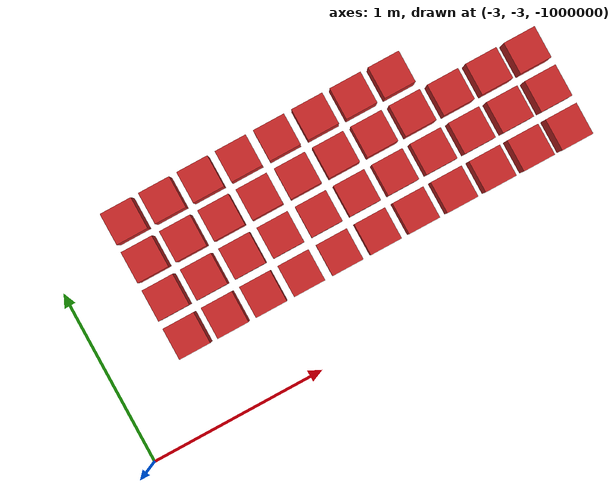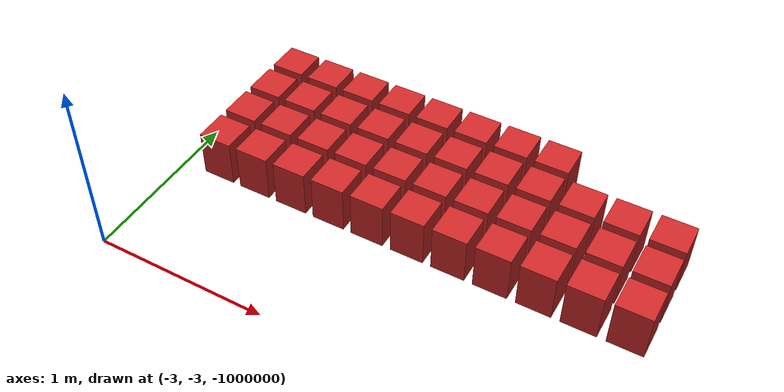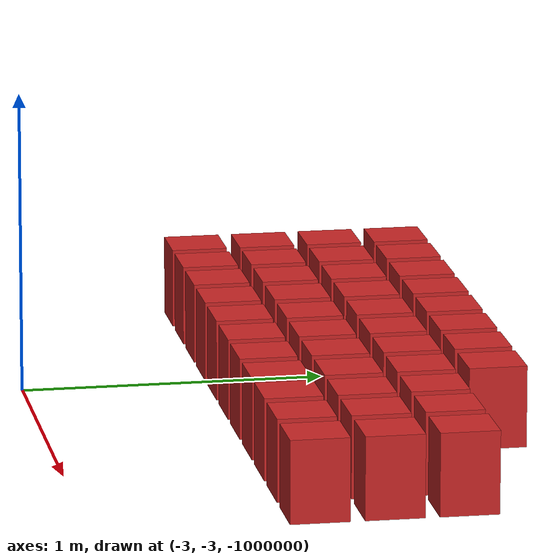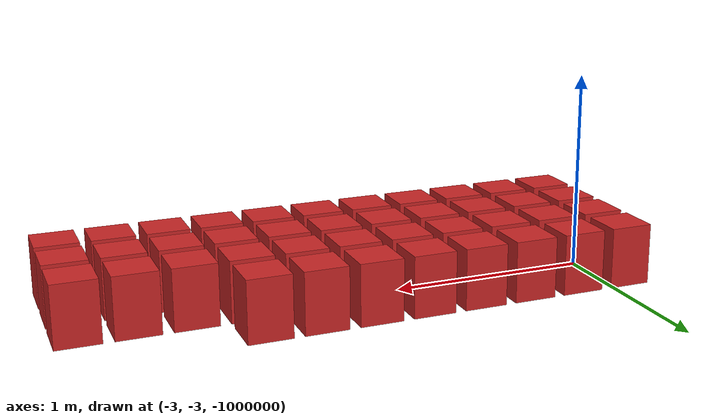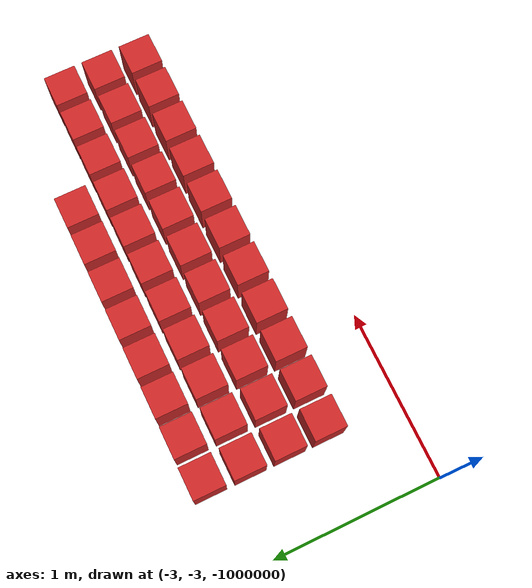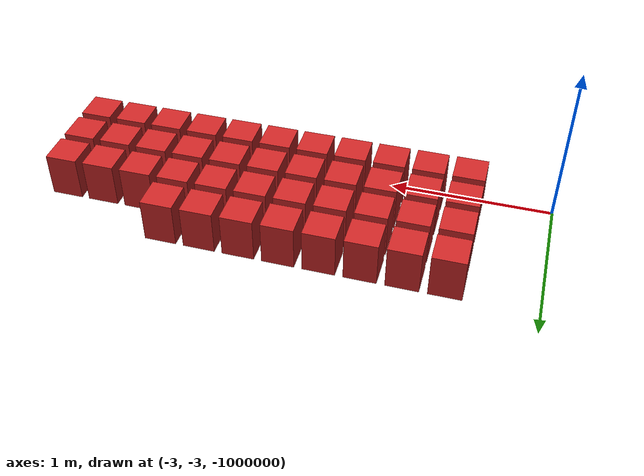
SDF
<sdf version="1.7">
 <world name="default">
  <model name="ground_plane">
   <static>1</static>
   <link name="link">
    <collision name="collision">
     <geometry><plane><normal>0 0 1</normal><size>100 100</size></plane></geometry>
     <surface>
      <contact><collide_bitmask>65535</collide_bitmask></contact>
      <friction><ode><mu>100</mu><mu2>50</mu2></ode></friction>
     </surface>
    </collision>
    <visual name="visual">
     <cast_shadows>0</cast_shadows>
     <geometry><plane><normal>0 0 1</normal><size>100 100</size></plane></geometry>
     <material>
      <script><uri>file://media/materials/scripts/gazebo.material</uri><name>Gazebo/Grey</name></script>
     </material>
    </visual>
   </link>
  </model>
  <model name="wall_0">
   <link name="link">
    <pose>0 0 0.5 0 -0 0</pose>
    <inertial>
     <mass>0.5167</mass>
     <inertia>
      <ixx>0.000861167</ixx>
      <ixy>0</ixy>
      <ixz>0</ixz>
      <iyy>0.000861167</iyy>
      <iyz>0</iyz>
      <izz>0.000861167</izz>
     </inertia>
    </inertial>
    <collision name="collision">
     <geometry><box><size>0.21 0.21 0.25</size></box></geometry>
     <surface>
      <contact>
       <poissons_ratio>0.347</poissons_ratio>
       <elastic_modulus>8.8e+09</elastic_modulus>
       <ode><kp>100000</kp><kd>100</kd><max_vel>100</max_vel><min_depth>0.001</min_depth></ode>
      </contact>
      <friction>
       <torsional>
        <coefficient>1</coefficient>
        <use_patch_radius>0</use_patch_radius>
        <surface_radius>0.01</surface_radius>
       </torsional>
      </friction>
     </surface>
    </collision>
    <visual name="visual">
     <geometry><box><size>0.175 0.175 0.25</size></box></geometry>
     <material>
      <script><uri>file://media/materials/scripts/gazebo.material</uri><name>Gazebo/Red</name></script>
     </material>
    </visual>
   </link>
   <pose>-2.5 -2.5 -1e+06 0 -0 0</pose>
  </model>
  <model name="wall_1">
   <link name="link">
    <pose>0 0 0.5 0 -0 0</pose>
    <inertial>
     <mass>0.5167</mass>
     <inertia>
      <ixx>0.000861167</ixx>
      <ixy>0</ixy>
      <ixz>0</ixz>
      <iyy>0.000861167</iyy>
      <iyz>0</iyz>
      <izz>0.000861167</izz>
     </inertia>
    </inertial>
    <collision name="collision">
     <geometry><box><size>0.21 0.21 0.25</size></box></geometry>
     <surface>
      <contact>
       <poissons_ratio>0.347</poissons_ratio>
       <elastic_modulus>8.8e+09</elastic_modulus>
       <ode><kp>100000</kp><kd>100</kd><max_vel>100</max_vel><min_depth>0.001</min_depth></ode>
      </contact>
      <friction>
       <torsional>
        <coefficient>1</coefficient>
        <use_patch_radius>0</use_patch_radius>
        <surface_radius>0.01</surface_radius>
       </torsional>
      </friction>
     </surface>
    </collision>
    <visual name="visual">
     <geometry><box><size>0.175 0.175 0.25</size></box></geometry>
     <material>
      <script><uri>file://media/materials/scripts/gazebo.material</uri><name>Gazebo/Red</name></script>
     </material>
    </visual>
   </link>
   <pose>-2.28261 -2.5 -1e+06 0 -0 0</pose>
  </model>
  <model name="wall_2">
   <link name="link">
    <pose>0 0 0.5 0 -0 0</pose>
    <inertial>
     <mass>0.5167</mass>
     <inertia>
      <ixx>0.000861167</ixx>
      <ixy>0</ixy>
      <ixz>0</ixz>
      <iyy>0.000861167</iyy>
      <iyz>0</iyz>
      <izz>0.000861167</izz>
     </inertia>
    </inertial>
    <collision name="collision">
     <geometry><box><size>0.21 0.21 0.25</size></box></geometry>
     <surface>
      <contact>
       <poissons_ratio>0.347</poissons_ratio>
       <elastic_modulus>8.8e+09</elastic_modulus>
       <ode><kp>100000</kp><kd>100</kd><max_vel>100</max_vel><min_depth>0.001</min_depth></ode>
      </contact>
      <friction>
       <torsional>
        <coefficient>1</coefficient>
        <use_patch_radius>0</use_patch_radius>
        <surface_radius>0.01</surface_radius>
       </torsional>
      </friction>
     </surface>
    </collision>
    <visual name="visual">
     <geometry><box><size>0.175 0.175 0.25</size></box></geometry>
     <material>
      <script><uri>file://media/materials/scripts/gazebo.material</uri><name>Gazebo/Red</name></script>
     </material>
    </visual>
   </link>
   <pose>-2.06522 -2.5 -1e+06 0 -0 0</pose>
  </model>
  <model name="wall_3">
   <link name="link">
    <pose>0 0 0.5 0 -0 0</pose>
    <inertial>
     <mass>0.5167</mass>
     <inertia>
      <ixx>0.000861167</ixx>
      <ixy>0</ixy>
      <ixz>0</ixz>
      <iyy>0.000861167</iyy>
      <iyz>0</iyz>
      <izz>0.000861167</izz>
     </inertia>
    </inertial>
    <collision name="collision">
     <geometry><box><size>0.21 0.21 0.25</size></box></geometry>
     <surface>
      <contact>
       <poissons_ratio>0.347</poissons_ratio>
       <elastic_modulus>8.8e+09</elastic_modulus>
       <ode><kp>100000</kp><kd>100</kd><max_vel>100</max_vel><min_depth>0.001</min_depth></ode>
      </contact>
      <friction>
       <torsional>
        <coefficient>1</coefficient>
        <use_patch_radius>0</use_patch_radius>
        <surface_radius>0.01</surface_radius>
       </torsional>
      </friction>
     </surface>
    </collision>
    <visual name="visual">
     <geometry><box><size>0.175 0.175 0.25</size></box></geometry>
     <material>
      <script><uri>file://media/materials/scripts/gazebo.material</uri><name>Gazebo/Red</name></script>
     </material>
    </visual>
   </link>
   <pose>-1.84783 -2.5 -1e+06 0 -0 0</pose>
  </model>
  <model name="wall_4">
   <link name="link">
    <pose>0 0 0.5 0 -0 0</pose>
    <inertial>
     <mass>0.5167</mass>
     <inertia>
      <ixx>0.000861167</ixx>
      <ixy>0</ixy>
      <ixz>0</ixz>
      <iyy>0.000861167</iyy>
      <iyz>0</iyz>
      <izz>0.000861167</izz>
     </inertia>
    </inertial>
    <collision name="collision">
     <geometry><box><size>0.21 0.21 0.25</size></box></geometry>
     <surface>
      <contact>
       <poissons_ratio>0.347</poissons_ratio>
       <elastic_modulus>8.8e+09</elastic_modulus>
       <ode><kp>100000</kp><kd>100</kd><max_vel>100</max_vel><min_depth>0.001</min_depth></ode>
      </contact>
      <friction>
       <torsional>
        <coefficient>1</coefficient>
        <use_patch_radius>0</use_patch_radius>
        <surface_radius>0.01</surface_radius>
       </torsional>
      </friction>
     </surface>
    </collision>
    <visual name="visual">
     <geometry><box><size>0.175 0.175 0.25</size></box></geometry>
     <material>
      <script><uri>file://media/materials/scripts/gazebo.material</uri><name>Gazebo/Red</name></script>
     </material>
    </visual>
   </link>
   <pose>-1.63043 -2.5 -1e+06 0 -0 0</pose>
  </model>
  <model name="wall_5">
   <link name="link">
    <pose>0 0 0.5 0 -0 0</pose>
    <inertial>
     <mass>0.5167</mass>
     <inertia>
      <ixx>0.000861167</ixx>
      <ixy>0</ixy>
      <ixz>0</ixz>
      <iyy>0.000861167</iyy>
      <iyz>0</iyz>
      <izz>0.000861167</izz>
     </inertia>
    </inertial>
    <collision name="collision">
     <geometry><box><size>0.21 0.21 0.25</size></box></geometry>
     <surface>
      <contact>
       <poissons_ratio>0.347</poissons_ratio>
       <elastic_modulus>8.8e+09</elastic_modulus>
       <ode><kp>100000</kp><kd>100</kd><max_vel>100</max_vel><min_depth>0.001</min_depth></ode>
      </contact>
      <friction>
       <torsional>
        <coefficient>1</coefficient>
        <use_patch_radius>0</use_patch_radius>
        <surface_radius>0.01</surface_radius>
       </torsional>
      </friction>
     </surface>
    </collision>
    <visual name="visual">
     <geometry><box><size>0.175 0.175 0.25</size></box></geometry>
     <material>
      <script><uri>file://media/materials/scripts/gazebo.material</uri><name>Gazebo/Red</name></script>
     </material>
    </visual>
   </link>
   <pose>-1.41304 -2.5 -1e+06 0 -0 0</pose>
  </model>
  <model name="wall_6">
   <link name="link">
    <pose>0 0 0.5 0 -0 0</pose>
    <inertial>
     <mass>0.5167</mass>
     <inertia>
      <ixx>0.000861167</ixx>
      <ixy>0</ixy>
      <ixz>0</ixz>
      <iyy>0.000861167</iyy>
      <iyz>0</iyz>
      <izz>0.000861167</izz>
     </inertia>
    </inertial>
    <collision name="collision">
     <geometry><box><size>0.21 0.21 0.25</size></box></geometry>
     <surface>
      <contact>
       <poissons_ratio>0.347</poissons_ratio>
       <elastic_modulus>8.8e+09</elastic_modulus>
       <ode><kp>100000</kp><kd>100</kd><max_vel>100</max_vel><min_depth>0.001</min_depth></ode>
      </contact>
      <friction>
       <torsional>
        <coefficient>1</coefficient>
        <use_patch_radius>0</use_patch_radius>
        <surface_radius>0.01</surface_radius>
       </torsional>
      </friction>
     </surface>
    </collision>
    <visual name="visual">
     <geometry><box><size>0.175 0.175 0.25</size></box></geometry>
     <material>
      <script><uri>file://media/materials/scripts/gazebo.material</uri><name>Gazebo/Red</name></script>
     </material>
    </visual>
   </link>
   <pose>-1.19565 -2.5 -1e+06 0 -0 0</pose>
  </model>
  <model name="wall_7">
   <link name="link">
    <pose>0 0 0.5 0 -0 0</pose>
    <inertial>
     <mass>0.5167</mass>
     <inertia>
      <ixx>0.000861167</ixx>
      <ixy>0</ixy>
      <ixz>0</ixz>
      <iyy>0.000861167</iyy>
      <iyz>0</iyz>
      <izz>0.000861167</izz>
     </inertia>
    </inertial>
    <collision name="collision">
     <geometry><box><size>0.21 0.21 0.25</size></box></geometry>
     <surface>
      <contact>
       <poissons_ratio>0.347</poissons_ratio>
       <elastic_modulus>8.8e+09</elastic_modulus>
       <ode><kp>100000</kp><kd>100</kd><max_vel>100</max_vel><min_depth>0.001</min_depth></ode>
      </contact>
      <friction>
       <torsional>
        <coefficient>1</coefficient>
        <use_patch_radius>0</use_patch_radius>
        <surface_radius>0.01</surface_radius>
       </torsional>
      </friction>
     </surface>
    </collision>
    <visual name="visual">
     <geometry><box><size>0.175 0.175 0.25</size></box></geometry>
     <material>
      <script><uri>file://media/materials/scripts/gazebo.material</uri><name>Gazebo/Red</name></script>
     </material>
    </visual>
   </link>
   <pose>-0.978261 -2.5 -1e+06 0 -0 0</pose>
  </model>
  <model name="wall_8">
   <link name="link">
    <pose>0 0 0.5 0 -0 0</pose>
    <inertial>
     <mass>0.5167</mass>
     <inertia>
      <ixx>0.000861167</ixx>
      <ixy>0</ixy>
      <ixz>0</ixz>
      <iyy>0.000861167</iyy>
      <iyz>0</iyz>
      <izz>0.000861167</izz>
     </inertia>
    </inertial>
    <collision name="collision">
     <geometry><box><size>0.21 0.21 0.25</size></box></geometry>
     <surface>
      <contact>
       <poissons_ratio>0.347</poissons_ratio>
       <elastic_modulus>8.8e+09</elastic_modulus>
       <ode><kp>100000</kp><kd>100</kd><max_vel>100</max_vel><min_depth>0.001</min_depth></ode>
      </contact>
      <friction>
       <torsional>
        <coefficient>1</coefficient>
        <use_patch_radius>0</use_patch_radius>
        <surface_radius>0.01</surface_radius>
       </torsional>
      </friction>
     </surface>
    </collision>
    <visual name="visual">
     <geometry><box><size>0.175 0.175 0.25</size></box></geometry>
     <material>
      <script><uri>file://media/materials/scripts/gazebo.material</uri><name>Gazebo/Red</name></script>
     </material>
    </visual>
   </link>
   <pose>-0.76087 -2.5 -1e+06 0 -0 0</pose>
  </model>
  <model name="wall_9">
   <link name="link">
    <pose>0 0 0.5 0 -0 0</pose>
    <inertial>
     <mass>0.5167</mass>
     <inertia>
      <ixx>0.000861167</ixx>
      <ixy>0</ixy>
      <ixz>0</ixz>
      <iyy>0.000861167</iyy>
      <iyz>0</iyz>
      <izz>0.000861167</izz>
     </inertia>
    </inertial>
    <collision name="collision">
     <geometry><box><size>0.21 0.21 0.25</size></box></geometry>
     <surface>
      <contact>
       <poissons_ratio>0.347</poissons_ratio>
       <elastic_modulus>8.8e+09</elastic_modulus>
       <ode><kp>100000</kp><kd>100</kd><max_vel>100</max_vel><min_depth>0.001</min_depth></ode>
      </contact>
      <friction>
       <torsional>
        <coefficient>1</coefficient>
        <use_patch_radius>0</use_patch_radius>
        <surface_radius>0.01</surface_radius>
       </torsional>
      </friction>
     </surface>
    </collision>
    <visual name="visual">
     <geometry><box><size>0.175 0.175 0.25</size></box></geometry>
     <material>
      <script><uri>file://media/materials/scripts/gazebo.material</uri><name>Gazebo/Red</name></script>
     </material>
    </visual>
   </link>
   <pose>-0.543478 -2.5 -1e+06 0 -0 0</pose>
  </model>
  <model name="wall_10">
   <link name="link">
    <pose>0 0 0.5 0 -0 0</pose>
    <inertial>
     <mass>0.5167</mass>
     <inertia>
      <ixx>0.000861167</ixx>
      <ixy>0</ixy>
      <ixz>0</ixz>
      <iyy>0.000861167</iyy>
      <iyz>0</iyz>
      <izz>0.000861167</izz>
     </inertia>
    </inertial>
    <collision name="collision">
     <geometry><box><size>0.21 0.21 0.25</size></box></geometry>
     <surface>
      <contact>
       <poissons_ratio>0.347</poissons_ratio>
       <elastic_modulus>8.8e+09</elastic_modulus>
       <ode><kp>100000</kp><kd>100</kd><max_vel>100</max_vel><min_depth>0.001</min_depth></ode>
      </contact>
      <friction>
       <torsional>
        <coefficient>1</coefficient>
        <use_patch_radius>0</use_patch_radius>
        <surface_radius>0.01</surface_radius>
       </torsional>
      </friction>
     </surface>
    </collision>
    <visual name="visual">
     <geometry><box><size>0.175 0.175 0.25</size></box></geometry>
     <material>
      <script><uri>file://media/materials/scripts/gazebo.material</uri><name>Gazebo/Red</name></script>
     </material>
    </visual>
   </link>
   <pose>-0.326087 -2.5 -1e+06 0 -0 0</pose>
  </model>
  <model name="wall_23">
   <link name="link">
    <pose>0 0 0.5 0 -0 0</pose>
    <inertial>
     <mass>0.5167</mass>
     <inertia>
      <ixx>0.000861167</ixx>
      <ixy>0</ixy>
      <ixz>0</ixz>
      <iyy>0.000861167</iyy>
      <iyz>0</iyz>
      <izz>0.000861167</izz>
     </inertia>
    </inertial>
    <collision name="collision">
     <geometry><box><size>0.21 0.21 0.25</size></box></geometry>
     <surface>
      <contact>
       <poissons_ratio>0.347</poissons_ratio>
       <elastic_modulus>8.8e+09</elastic_modulus>
       <ode><kp>100000</kp><kd>100</kd><max_vel>100</max_vel><min_depth>0.001</min_depth></ode>
      </contact>
      <friction>
       <torsional>
        <coefficient>1</coefficient>
        <use_patch_radius>0</use_patch_radius>
        <surface_radius>0.01</surface_radius>
       </torsional>
      </friction>
     </surface>
    </collision>
    <visual name="visual">
     <geometry><box><size>0.175 0.175 0.25</size></box></geometry>
     <material>
      <script><uri>file://media/materials/scripts/gazebo.material</uri><name>Gazebo/Red</name></script>
     </material>
    </visual>
   </link>
   <pose>-2.5 -2.28261 -1e+06 0 -0 0</pose>
  </model>
  <model name="wall_24">
   <link name="link">
    <pose>0 0 0.5 0 -0 0</pose>
    <inertial>
     <mass>0.5167</mass>
     <inertia>
      <ixx>0.000861167</ixx>
      <ixy>0</ixy>
      <ixz>0</ixz>
      <iyy>0.000861167</iyy>
      <iyz>0</iyz>
      <izz>0.000861167</izz>
     </inertia>
    </inertial>
    <collision name="collision">
     <geometry><box><size>0.21 0.21 0.25</size></box></geometry>
     <surface>
      <contact>
       <poissons_ratio>0.347</poissons_ratio>
       <elastic_modulus>8.8e+09</elastic_modulus>
       <ode><kp>100000</kp><kd>100</kd><max_vel>100</max_vel><min_depth>0.001</min_depth></ode>
      </contact>
      <friction>
       <torsional>
        <coefficient>1</coefficient>
        <use_patch_radius>0</use_patch_radius>
        <surface_radius>0.01</surface_radius>
       </torsional>
      </friction>
     </surface>
    </collision>
    <visual name="visual">
     <geometry><box><size>0.175 0.175 0.25</size></box></geometry>
     <material>
      <script><uri>file://media/materials/scripts/gazebo.material</uri><name>Gazebo/Red</name></script>
     </material>
    </visual>
   </link>
   <pose>-2.28261 -2.28261 -1e+06 0 -0 0</pose>
  </model>
  <model name="wall_25">
   <link name="link">
    <pose>0 0 0.5 0 -0 0</pose>
    <inertial>
     <mass>0.5167</mass>
     <inertia>
      <ixx>0.000861167</ixx>
      <ixy>0</ixy>
      <ixz>0</ixz>
      <iyy>0.000861167</iyy>
      <iyz>0</iyz>
      <izz>0.000861167</izz>
     </inertia>
    </inertial>
    <collision name="collision">
     <geometry><box><size>0.21 0.21 0.25</size></box></geometry>
     <surface>
      <contact>
       <poissons_ratio>0.347</poissons_ratio>
       <elastic_modulus>8.8e+09</elastic_modulus>
       <ode><kp>100000</kp><kd>100</kd><max_vel>100</max_vel><min_depth>0.001</min_depth></ode>
      </contact>
      <friction>
       <torsional>
        <coefficient>1</coefficient>
        <use_patch_radius>0</use_patch_radius>
        <surface_radius>0.01</surface_radius>
       </torsional>
      </friction>
     </surface>
    </collision>
    <visual name="visual">
     <geometry><box><size>0.175 0.175 0.25</size></box></geometry>
     <material>
      <script><uri>file://media/materials/scripts/gazebo.material</uri><name>Gazebo/Red</name></script>
     </material>
    </visual>
   </link>
   <pose>-2.06522 -2.28261 -1e+06 0 -0 0</pose>
  </model>
  <model name="wall_26">
   <link name="link">
    <pose>0 0 0.5 0 -0 0</pose>
    <inertial>
     <mass>0.5167</mass>
     <inertia>
      <ixx>0.000861167</ixx>
      <ixy>0</ixy>
      <ixz>0</ixz>
      <iyy>0.000861167</iyy>
      <iyz>0</iyz>
      <izz>0.000861167</izz>
     </inertia>
    </inertial>
    <collision name="collision">
     <geometry><box><size>0.21 0.21 0.25</size></box></geometry>
     <surface>
      <contact>
       <poissons_ratio>0.347</poissons_ratio>
       <elastic_modulus>8.8e+09</elastic_modulus>
       <ode><kp>100000</kp><kd>100</kd><max_vel>100</max_vel><min_depth>0.001</min_depth></ode>
      </contact>
      <friction>
       <torsional>
        <coefficient>1</coefficient>
        <use_patch_radius>0</use_patch_radius>
        <surface_radius>0.01</surface_radius>
       </torsional>
      </friction>
     </surface>
    </collision>
    <visual name="visual">
     <geometry><box><size>0.175 0.175 0.25</size></box></geometry>
     <material>
      <script><uri>file://media/materials/scripts/gazebo.material</uri><name>Gazebo/Red</name></script>
     </material>
    </visual>
   </link>
   <pose>-1.84783 -2.28261 -1e+06 0 -0 0</pose>
  </model>
  <model name="wall_27">
   <link name="link">
    <pose>0 0 0.5 0 -0 0</pose>
    <inertial>
     <mass>0.5167</mass>
     <inertia>
      <ixx>0.000861167</ixx>
      <ixy>0</ixy>
      <ixz>0</ixz>
      <iyy>0.000861167</iyy>
      <iyz>0</iyz>
      <izz>0.000861167</izz>
     </inertia>
    </inertial>
    <collision name="collision">
     <geometry><box><size>0.21 0.21 0.25</size></box></geometry>
     <surface>
      <contact>
       <poissons_ratio>0.347</poissons_ratio>
       <elastic_modulus>8.8e+09</elastic_modulus>
       <ode><kp>100000</kp><kd>100</kd><max_vel>100</max_vel><min_depth>0.001</min_depth></ode>
      </contact>
      <friction>
       <torsional>
        <coefficient>1</coefficient>
        <use_patch_radius>0</use_patch_radius>
        <surface_radius>0.01</surface_radius>
       </torsional>
      </friction>
     </surface>
    </collision>
    <visual name="visual">
     <geometry><box><size>0.175 0.175 0.25</size></box></geometry>
     <material>
      <script><uri>file://media/materials/scripts/gazebo.material</uri><name>Gazebo/Red</name></script>
     </material>
    </visual>
   </link>
   <pose>-1.63043 -2.28261 -1e+06 0 -0 0</pose>
  </model>
  <model name="wall_28">
   <link name="link">
    <pose>0 0 0.5 0 -0 0</pose>
    <inertial>
     <mass>0.5167</mass>
     <inertia>
      <ixx>0.000861167</ixx>
      <ixy>0</ixy>
      <ixz>0</ixz>
      <iyy>0.000861167</iyy>
      <iyz>0</iyz>
      <izz>0.000861167</izz>
     </inertia>
    </inertial>
    <collision name="collision">
     <geometry><box><size>0.21 0.21 0.25</size></box></geometry>
     <surface>
      <contact>
       <poissons_ratio>0.347</poissons_ratio>
       <elastic_modulus>8.8e+09</elastic_modulus>
       <ode><kp>100000</kp><kd>100</kd><max_vel>100</max_vel><min_depth>0.001</min_depth></ode>
      </contact>
      <friction>
       <torsional>
        <coefficient>1</coefficient>
        <use_patch_radius>0</use_patch_radius>
        <surface_radius>0.01</surface_radius>
       </torsional>
      </friction>
     </surface>
    </collision>
    <visual name="visual">
     <geometry><box><size>0.175 0.175 0.25</size></box></geometry>
     <material>
      <script><uri>file://media/materials/scripts/gazebo.material</uri><name>Gazebo/Red</name></script>
     </material>
    </visual>
   </link>
   <pose>-1.41304 -2.28261 -1e+06 0 -0 0</pose>
  </model>
  <model name="wall_29">
   <link name="link">
    <pose>0 0 0.5 0 -0 0</pose>
    <inertial>
     <mass>0.5167</mass>
     <inertia>
      <ixx>0.000861167</ixx>
      <ixy>0</ixy>
      <ixz>0</ixz>
      <iyy>0.000861167</iyy>
      <iyz>0</iyz>
      <izz>0.000861167</izz>
     </inertia>
    </inertial>
    <collision name="collision">
     <geometry><box><size>0.21 0.21 0.25</size></box></geometry>
     <surface>
      <contact>
       <poissons_ratio>0.347</poissons_ratio>
       <elastic_modulus>8.8e+09</elastic_modulus>
       <ode><kp>100000</kp><kd>100</kd><max_vel>100</max_vel><min_depth>0.001</min_depth></ode>
      </contact>
      <friction>
       <torsional>
        <coefficient>1</coefficient>
        <use_patch_radius>0</use_patch_radius>
        <surface_radius>0.01</surface_radius>
       </torsional>
      </friction>
     </surface>
    </collision>
    <visual name="visual">
     <geometry><box><size>0.175 0.175 0.25</size></box></geometry>
     <material>
      <script><uri>file://media/materials/scripts/gazebo.material</uri><name>Gazebo/Red</name></script>
     </material>
    </visual>
   </link>
   <pose>-1.19565 -2.28261 -1e+06 0 -0 0</pose>
  </model>
  <model name="wall_30">
   <link name="link">
    <pose>0 0 0.5 0 -0 0</pose>
    <inertial>
     <mass>0.5167</mass>
     <inertia>
      <ixx>0.000861167</ixx>
      <ixy>0</ixy>
      <ixz>0</ixz>
      <iyy>0.000861167</iyy>
      <iyz>0</iyz>
      <izz>0.000861167</izz>
     </inertia>
    </inertial>
    <collision name="collision">
     <geometry><box><size>0.21 0.21 0.25</size></box></geometry>
     <surface>
      <contact>
       <poissons_ratio>0.347</poissons_ratio>
       <elastic_modulus>8.8e+09</elastic_modulus>
       <ode><kp>100000</kp><kd>100</kd><max_vel>100</max_vel><min_depth>0.001</min_depth></ode>
      </contact>
      <friction>
       <torsional>
        <coefficient>1</coefficient>
        <use_patch_radius>0</use_patch_radius>
        <surface_radius>0.01</surface_radius>
       </torsional>
      </friction>
     </surface>
    </collision>
    <visual name="visual">
     <geometry><box><size>0.175 0.175 0.25</size></box></geometry>
     <material>
      <script><uri>file://media/materials/scripts/gazebo.material</uri><name>Gazebo/Red</name></script>
     </material>
    </visual>
   </link>
   <pose>-0.978261 -2.28261 -1e+06 0 -0 0</pose>
  </model>
  <model name="wall_31">
   <link name="link">
    <pose>0 0 0.5 0 -0 0</pose>
    <inertial>
     <mass>0.5167</mass>
     <inertia>
      <ixx>0.000861167</ixx>
      <ixy>0</ixy>
      <ixz>0</ixz>
      <iyy>0.000861167</iyy>
      <iyz>0</iyz>
      <izz>0.000861167</izz>
     </inertia>
    </inertial>
    <collision name="collision">
     <geometry><box><size>0.21 0.21 0.25</size></box></geometry>
     <surface>
      <contact>
       <poissons_ratio>0.347</poissons_ratio>
       <elastic_modulus>8.8e+09</elastic_modulus>
       <ode><kp>100000</kp><kd>100</kd><max_vel>100</max_vel><min_depth>0.001</min_depth></ode>
      </contact>
      <friction>
       <torsional>
        <coefficient>1</coefficient>
        <use_patch_radius>0</use_patch_radius>
        <surface_radius>0.01</surface_radius>
       </torsional>
      </friction>
     </surface>
    </collision>
    <visual name="visual">
     <geometry><box><size>0.175 0.175 0.25</size></box></geometry>
     <material>
      <script><uri>file://media/materials/scripts/gazebo.material</uri><name>Gazebo/Red</name></script>
     </material>
    </visual>
   </link>
   <pose>-0.76087 -2.28261 -1e+06 0 -0 0</pose>
  </model>
  <model name="wall_32">
   <link name="link">
    <pose>0 0 0.5 0 -0 0</pose>
    <inertial>
     <mass>0.5167</mass>
     <inertia>
      <ixx>0.000861167</ixx>
      <ixy>0</ixy>
      <ixz>0</ixz>
      <iyy>0.000861167</iyy>
      <iyz>0</iyz>
      <izz>0.000861167</izz>
     </inertia>
    </inertial>
    <collision name="collision">
     <geometry><box><size>0.21 0.21 0.25</size></box></geometry>
     <surface>
      <contact>
       <poissons_ratio>0.347</poissons_ratio>
       <elastic_modulus>8.8e+09</elastic_modulus>
       <ode><kp>100000</kp><kd>100</kd><max_vel>100</max_vel><min_depth>0.001</min_depth></ode>
      </contact>
      <friction>
       <torsional>
        <coefficient>1</coefficient>
        <use_patch_radius>0</use_patch_radius>
        <surface_radius>0.01</surface_radius>
       </torsional>
      </friction>
     </surface>
    </collision>
    <visual name="visual">
     <geometry><box><size>0.175 0.175 0.25</size></box></geometry>
     <material>
      <script><uri>file://media/materials/scripts/gazebo.material</uri><name>Gazebo/Red</name></script>
     </material>
    </visual>
   </link>
   <pose>-0.543478 -2.28261 -1e+06 0 -0 0</pose>
  </model>
  <model name="wall_33">
   <link name="link">
    <pose>0 0 0.5 0 -0 0</pose>
    <inertial>
     <mass>0.5167</mass>
     <inertia>
      <ixx>0.000861167</ixx>
      <ixy>0</ixy>
      <ixz>0</ixz>
      <iyy>0.000861167</iyy>
      <iyz>0</iyz>
      <izz>0.000861167</izz>
     </inertia>
    </inertial>
    <collision name="collision">
     <geometry><box><size>0.21 0.21 0.25</size></box></geometry>
     <surface>
      <contact>
       <poissons_ratio>0.347</poissons_ratio>
       <elastic_modulus>8.8e+09</elastic_modulus>
       <ode><kp>100000</kp><kd>100</kd><max_vel>100</max_vel><min_depth>0.001</min_depth></ode>
      </contact>
      <friction>
       <torsional>
        <coefficient>1</coefficient>
        <use_patch_radius>0</use_patch_radius>
        <surface_radius>0.01</surface_radius>
       </torsional>
      </friction>
     </surface>
    </collision>
    <visual name="visual">
     <geometry><box><size>0.175 0.175 0.25</size></box></geometry>
     <material>
      <script><uri>file://media/materials/scripts/gazebo.material</uri><name>Gazebo/Red</name></script>
     </material>
    </visual>
   </link>
   <pose>-0.326087 -2.28261 -1e+06 0 -0 0</pose>
  </model>
  <model name="wall_46">
   <link name="link">
    <pose>0 0 0.5 0 -0 0</pose>
    <inertial>
     <mass>0.5167</mass>
     <inertia>
      <ixx>0.000861167</ixx>
      <ixy>0</ixy>
      <ixz>0</ixz>
      <iyy>0.000861167</iyy>
      <iyz>0</iyz>
      <izz>0.000861167</izz>
     </inertia>
    </inertial>
    <collision name="collision">
     <geometry><box><size>0.21 0.21 0.25</size></box></geometry>
     <surface>
      <contact>
       <poissons_ratio>0.347</poissons_ratio>
       <elastic_modulus>8.8e+09</elastic_modulus>
       <ode><kp>100000</kp><kd>100</kd><max_vel>100</max_vel><min_depth>0.001</min_depth></ode>
      </contact>
      <friction>
       <torsional>
        <coefficient>1</coefficient>
        <use_patch_radius>0</use_patch_radius>
        <surface_radius>0.01</surface_radius>
       </torsional>
      </friction>
     </surface>
    </collision>
    <visual name="visual">
     <geometry><box><size>0.175 0.175 0.25</size></box></geometry>
     <material>
      <script><uri>file://media/materials/scripts/gazebo.material</uri><name>Gazebo/Red</name></script>
     </material>
    </visual>
   </link>
   <pose>-2.5 -2.06522 -1e+06 0 -0 0</pose>
  </model>
  <model name="wall_47">
   <link name="link">
    <pose>0 0 0.5 0 -0 0</pose>
    <inertial>
     <mass>0.5167</mass>
     <inertia>
      <ixx>0.000861167</ixx>
      <ixy>0</ixy>
      <ixz>0</ixz>
      <iyy>0.000861167</iyy>
      <iyz>0</iyz>
      <izz>0.000861167</izz>
     </inertia>
    </inertial>
    <collision name="collision">
     <geometry><box><size>0.21 0.21 0.25</size></box></geometry>
     <surface>
      <contact>
       <poissons_ratio>0.347</poissons_ratio>
       <elastic_modulus>8.8e+09</elastic_modulus>
       <ode><kp>100000</kp><kd>100</kd><max_vel>100</max_vel><min_depth>0.001</min_depth></ode>
      </contact>
      <friction>
       <torsional>
        <coefficient>1</coefficient>
        <use_patch_radius>0</use_patch_radius>
        <surface_radius>0.01</surface_radius>
       </torsional>
      </friction>
     </surface>
    </collision>
    <visual name="visual">
     <geometry><box><size>0.175 0.175 0.25</size></box></geometry>
     <material>
      <script><uri>file://media/materials/scripts/gazebo.material</uri><name>Gazebo/Red</name></script>
     </material>
    </visual>
   </link>
   <pose>-2.28261 -2.06522 -1e+06 0 -0 0</pose>
  </model>
  <model name="wall_48">
   <link name="link">
    <pose>0 0 0.5 0 -0 0</pose>
    <inertial>
     <mass>0.5167</mass>
     <inertia>
      <ixx>0.000861167</ixx>
      <ixy>0</ixy>
      <ixz>0</ixz>
      <iyy>0.000861167</iyy>
      <iyz>0</iyz>
      <izz>0.000861167</izz>
     </inertia>
    </inertial>
    <collision name="collision">
     <geometry><box><size>0.21 0.21 0.25</size></box></geometry>
     <surface>
      <contact>
       <poissons_ratio>0.347</poissons_ratio>
       <elastic_modulus>8.8e+09</elastic_modulus>
       <ode><kp>100000</kp><kd>100</kd><max_vel>100</max_vel><min_depth>0.001</min_depth></ode>
      </contact>
      <friction>
       <torsional>
        <coefficient>1</coefficient>
        <use_patch_radius>0</use_patch_radius>
        <surface_radius>0.01</surface_radius>
       </torsional>
      </friction>
     </surface>
    </collision>
    <visual name="visual">
     <geometry><box><size>0.175 0.175 0.25</size></box></geometry>
     <material>
      <script><uri>file://media/materials/scripts/gazebo.material</uri><name>Gazebo/Red</name></script>
     </material>
    </visual>
   </link>
   <pose>-2.06522 -2.06522 -1e+06 0 -0 0</pose>
  </model>
  <model name="wall_49">
   <link name="link">
    <pose>0 0 0.5 0 -0 0</pose>
    <inertial>
     <mass>0.5167</mass>
     <inertia>
      <ixx>0.000861167</ixx>
      <ixy>0</ixy>
      <ixz>0</ixz>
      <iyy>0.000861167</iyy>
      <iyz>0</iyz>
      <izz>0.000861167</izz>
     </inertia>
    </inertial>
    <collision name="collision">
     <geometry><box><size>0.21 0.21 0.25</size></box></geometry>
     <surface>
      <contact>
       <poissons_ratio>0.347</poissons_ratio>
       <elastic_modulus>8.8e+09</elastic_modulus>
       <ode><kp>100000</kp><kd>100</kd><max_vel>100</max_vel><min_depth>0.001</min_depth></ode>
      </contact>
      <friction>
       <torsional>
        <coefficient>1</coefficient>
        <use_patch_radius>0</use_patch_radius>
        <surface_radius>0.01</surface_radius>
       </torsional>
      </friction>
     </surface>
    </collision>
    <visual name="visual">
     <geometry><box><size>0.175 0.175 0.25</size></box></geometry>
     <material>
      <script><uri>file://media/materials/scripts/gazebo.material</uri><name>Gazebo/Red</name></script>
     </material>
    </visual>
   </link>
   <pose>-1.84783 -2.06522 -1e+06 0 -0 0</pose>
  </model>
  <model name="wall_50">
   <link name="link">
    <pose>0 0 0.5 0 -0 0</pose>
    <inertial>
     <mass>0.5167</mass>
     <inertia>
      <ixx>0.000861167</ixx>
      <ixy>0</ixy>
      <ixz>0</ixz>
      <iyy>0.000861167</iyy>
      <iyz>0</iyz>
      <izz>0.000861167</izz>
     </inertia>
    </inertial>
    <collision name="collision">
     <geometry><box><size>0.21 0.21 0.25</size></box></geometry>
     <surface>
      <contact>
       <poissons_ratio>0.347</poissons_ratio>
       <elastic_modulus>8.8e+09</elastic_modulus>
       <ode><kp>100000</kp><kd>100</kd><max_vel>100</max_vel><min_depth>0.001</min_depth></ode>
      </contact>
      <friction>
       <torsional>
        <coefficient>1</coefficient>
        <use_patch_radius>0</use_patch_radius>
        <surface_radius>0.01</surface_radius>
       </torsional>
      </friction>
     </surface>
    </collision>
    <visual name="visual">
     <geometry><box><size>0.175 0.175 0.25</size></box></geometry>
     <material>
      <script><uri>file://media/materials/scripts/gazebo.material</uri><name>Gazebo/Red</name></script>
     </material>
    </visual>
   </link>
   <pose>-1.63043 -2.06522 -1e+06 0 -0 0</pose>
  </model>
  <model name="wall_51">
   <link name="link">
    <pose>0 0 0.5 0 -0 0</pose>
    <inertial>
     <mass>0.5167</mass>
     <inertia>
      <ixx>0.000861167</ixx>
      <ixy>0</ixy>
      <ixz>0</ixz>
      <iyy>0.000861167</iyy>
      <iyz>0</iyz>
      <izz>0.000861167</izz>
     </inertia>
    </inertial>
    <collision name="collision">
     <geometry><box><size>0.21 0.21 0.25</size></box></geometry>
     <surface>
      <contact>
       <poissons_ratio>0.347</poissons_ratio>
       <elastic_modulus>8.8e+09</elastic_modulus>
       <ode><kp>100000</kp><kd>100</kd><max_vel>100</max_vel><min_depth>0.001</min_depth></ode>
      </contact>
      <friction>
       <torsional>
        <coefficient>1</coefficient>
        <use_patch_radius>0</use_patch_radius>
        <surface_radius>0.01</surface_radius>
       </torsional>
      </friction>
     </surface>
    </collision>
    <visual name="visual">
     <geometry><box><size>0.175 0.175 0.25</size></box></geometry>
     <material>
      <script><uri>file://media/materials/scripts/gazebo.material</uri><name>Gazebo/Red</name></script>
     </material>
    </visual>
   </link>
   <pose>-1.41304 -2.06522 -1e+06 0 -0 0</pose>
  </model>
  <model name="wall_52">
   <link name="link">
    <pose>0 0 0.5 0 -0 0</pose>
    <inertial>
     <mass>0.5167</mass>
     <inertia>
      <ixx>0.000861167</ixx>
      <ixy>0</ixy>
      <ixz>0</ixz>
      <iyy>0.000861167</iyy>
      <iyz>0</iyz>
      <izz>0.000861167</izz>
     </inertia>
    </inertial>
    <collision name="collision">
     <geometry><box><size>0.21 0.21 0.25</size></box></geometry>
     <surface>
      <contact>
       <poissons_ratio>0.347</poissons_ratio>
       <elastic_modulus>8.8e+09</elastic_modulus>
       <ode><kp>100000</kp><kd>100</kd><max_vel>100</max_vel><min_depth>0.001</min_depth></ode>
      </contact>
      <friction>
       <torsional>
        <coefficient>1</coefficient>
        <use_patch_radius>0</use_patch_radius>
        <surface_radius>0.01</surface_radius>
       </torsional>
      </friction>
     </surface>
    </collision>
    <visual name="visual">
     <geometry><box><size>0.175 0.175 0.25</size></box></geometry>
     <material>
      <script><uri>file://media/materials/scripts/gazebo.material</uri><name>Gazebo/Red</name></script>
     </material>
    </visual>
   </link>
   <pose>-1.19565 -2.06522 -1e+06 0 -0 0</pose>
  </model>
  <model name="wall_53">
   <link name="link">
    <pose>0 0 0.5 0 -0 0</pose>
    <inertial>
     <mass>0.5167</mass>
     <inertia>
      <ixx>0.000861167</ixx>
      <ixy>0</ixy>
      <ixz>0</ixz>
      <iyy>0.000861167</iyy>
      <iyz>0</iyz>
      <izz>0.000861167</izz>
     </inertia>
    </inertial>
    <collision name="collision">
     <geometry><box><size>0.21 0.21 0.25</size></box></geometry>
     <surface>
      <contact>
       <poissons_ratio>0.347</poissons_ratio>
       <elastic_modulus>8.8e+09</elastic_modulus>
       <ode><kp>100000</kp><kd>100</kd><max_vel>100</max_vel><min_depth>0.001</min_depth></ode>
      </contact>
      <friction>
       <torsional>
        <coefficient>1</coefficient>
        <use_patch_radius>0</use_patch_radius>
        <surface_radius>0.01</surface_radius>
       </torsional>
      </friction>
     </surface>
    </collision>
    <visual name="visual">
     <geometry><box><size>0.175 0.175 0.25</size></box></geometry>
     <material>
      <script><uri>file://media/materials/scripts/gazebo.material</uri><name>Gazebo/Red</name></script>
     </material>
    </visual>
   </link>
   <pose>-0.978261 -2.06522 -1e+06 0 -0 0</pose>
  </model>
  <model name="wall_54">
   <link name="link">
    <pose>0 0 0.5 0 -0 0</pose>
    <inertial>
     <mass>0.5167</mass>
     <inertia>
      <ixx>0.000861167</ixx>
      <ixy>0</ixy>
      <ixz>0</ixz>
      <iyy>0.000861167</iyy>
      <iyz>0</iyz>
      <izz>0.000861167</izz>
     </inertia>
    </inertial>
    <collision name="collision">
     <geometry><box><size>0.21 0.21 0.25</size></box></geometry>
     <surface>
      <contact>
       <poissons_ratio>0.347</poissons_ratio>
       <elastic_modulus>8.8e+09</elastic_modulus>
       <ode><kp>100000</kp><kd>100</kd><max_vel>100</max_vel><min_depth>0.001</min_depth></ode>
      </contact>
      <friction>
       <torsional>
        <coefficient>1</coefficient>
        <use_patch_radius>0</use_patch_radius>
        <surface_radius>0.01</surface_radius>
       </torsional>
      </friction>
     </surface>
    </collision>
    <visual name="visual">
     <geometry><box><size>0.175 0.175 0.25</size></box></geometry>
     <material>
      <script><uri>file://media/materials/scripts/gazebo.material</uri><name>Gazebo/Red</name></script>
     </material>
    </visual>
   </link>
   <pose>-0.76087 -2.06522 -1e+06 0 -0 0</pose>
  </model>
  <model name="wall_55">
   <link name="link">
    <pose>0 0 0.5 0 -0 0</pose>
    <inertial>
     <mass>0.5167</mass>
     <inertia>
      <ixx>0.000861167</ixx>
      <ixy>0</ixy>
      <ixz>0</ixz>
      <iyy>0.000861167</iyy>
      <iyz>0</iyz>
      <izz>0.000861167</izz>
     </inertia>
    </inertial>
    <collision name="collision">
     <geometry><box><size>0.21 0.21 0.25</size></box></geometry>
     <surface>
      <contact>
       <poissons_ratio>0.347</poissons_ratio>
       <elastic_modulus>8.8e+09</elastic_modulus>
       <ode><kp>100000</kp><kd>100</kd><max_vel>100</max_vel><min_depth>0.001</min_depth></ode>
      </contact>
      <friction>
       <torsional>
        <coefficient>1</coefficient>
        <use_patch_radius>0</use_patch_radius>
        <surface_radius>0.01</surface_radius>
       </torsional>
      </friction>
     </surface>
    </collision>
    <visual name="visual">
     <geometry><box><size>0.175 0.175 0.25</size></box></geometry>
     <material>
      <script><uri>file://media/materials/scripts/gazebo.material</uri><name>Gazebo/Red</name></script>
     </material>
    </visual>
   </link>
   <pose>-0.543478 -2.06522 -1e+06 0 -0 0</pose>
  </model>
  <model name="wall_56">
   <link name="link">
    <pose>0 0 0.5 0 -0 0</pose>
    <inertial>
     <mass>0.5167</mass>
     <inertia>
      <ixx>0.000861167</ixx>
      <ixy>0</ixy>
      <ixz>0</ixz>
      <iyy>0.000861167</iyy>
      <iyz>0</iyz>
      <izz>0.000861167</izz>
     </inertia>
    </inertial>
    <collision name="collision">
     <geometry><box><size>0.21 0.21 0.25</size></box></geometry>
     <surface>
      <contact>
       <poissons_ratio>0.347</poissons_ratio>
       <elastic_modulus>8.8e+09</elastic_modulus>
       <ode><kp>100000</kp><kd>100</kd><max_vel>100</max_vel><min_depth>0.001</min_depth></ode>
      </contact>
      <friction>
       <torsional>
        <coefficient>1</coefficient>
        <use_patch_radius>0</use_patch_radius>
        <surface_radius>0.01</surface_radius>
       </torsional>
      </friction>
     </surface>
    </collision>
    <visual name="visual">
     <geometry><box><size>0.175 0.175 0.25</size></box></geometry>
     <material>
      <script><uri>file://media/materials/scripts/gazebo.material</uri><name>Gazebo/Red</name></script>
     </material>
    </visual>
   </link>
   <pose>-0.326087 -2.06522 -1e+06 0 -0 0</pose>
  </model>
  <model name="wall_69">
   <link name="link">
    <pose>0 0 0.5 0 -0 0</pose>
    <inertial>
     <mass>0.5167</mass>
     <inertia>
      <ixx>0.000861167</ixx>
      <ixy>0</ixy>
      <ixz>0</ixz>
      <iyy>0.000861167</iyy>
      <iyz>0</iyz>
      <izz>0.000861167</izz>
     </inertia>
    </inertial>
    <collision name="collision">
     <geometry><box><size>0.21 0.21 0.25</size></box></geometry>
     <surface>
      <contact>
       <poissons_ratio>0.347</poissons_ratio>
       <elastic_modulus>8.8e+09</elastic_modulus>
       <ode><kp>100000</kp><kd>100</kd><max_vel>100</max_vel><min_depth>0.001</min_depth></ode>
      </contact>
      <friction>
       <torsional>
        <coefficient>1</coefficient>
        <use_patch_radius>0</use_patch_radius>
        <surface_radius>0.01</surface_radius>
       </torsional>
      </friction>
     </surface>
    </collision>
    <visual name="visual">
     <geometry><box><size>0.175 0.175 0.25</size></box></geometry>
     <material>
      <script><uri>file://media/materials/scripts/gazebo.material</uri><name>Gazebo/Red</name></script>
     </material>
    </visual>
   </link>
   <pose>-2.5 -1.84783 -1e+06 0 -0 0</pose>
  </model>
  <model name="wall_70">
   <link name="link">
    <pose>0 0 0.5 0 -0 0</pose>
    <inertial>
     <mass>0.5167</mass>
     <inertia>
      <ixx>0.000861167</ixx>
      <ixy>0</ixy>
      <ixz>0</ixz>
      <iyy>0.000861167</iyy>
      <iyz>0</iyz>
      <izz>0.000861167</izz>
     </inertia>
    </inertial>
    <collision name="collision">
     <geometry><box><size>0.21 0.21 0.25</size></box></geometry>
     <surface>
      <contact>
       <poissons_ratio>0.347</poissons_ratio>
       <elastic_modulus>8.8e+09</elastic_modulus>
       <ode><kp>100000</kp><kd>100</kd><max_vel>100</max_vel><min_depth>0.001</min_depth></ode>
      </contact>
      <friction>
       <torsional>
        <coefficient>1</coefficient>
        <use_patch_radius>0</use_patch_radius>
        <surface_radius>0.01</surface_radius>
       </torsional>
      </friction>
     </surface>
    </collision>
    <visual name="visual">
     <geometry><box><size>0.175 0.175 0.25</size></box></geometry>
     <material>
      <script><uri>file://media/materials/scripts/gazebo.material</uri><name>Gazebo/Red</name></script>
     </material>
    </visual>
   </link>
   <pose>-2.28261 -1.84783 -1e+06 0 -0 0</pose>
  </model>
  <model name="wall_71">
   <link name="link">
    <pose>0 0 0.5 0 -0 0</pose>
    <inertial>
     <mass>0.5167</mass>
     <inertia>
      <ixx>0.000861167</ixx>
      <ixy>0</ixy>
      <ixz>0</ixz>
      <iyy>0.000861167</iyy>
      <iyz>0</iyz>
      <izz>0.000861167</izz>
     </inertia>
    </inertial>
    <collision name="collision">
     <geometry><box><size>0.21 0.21 0.25</size></box></geometry>
     <surface>
      <contact>
       <poissons_ratio>0.347</poissons_ratio>
       <elastic_modulus>8.8e+09</elastic_modulus>
       <ode><kp>100000</kp><kd>100</kd><max_vel>100</max_vel><min_depth>0.001</min_depth></ode>
      </contact>
      <friction>
       <torsional>
        <coefficient>1</coefficient>
        <use_patch_radius>0</use_patch_radius>
        <surface_radius>0.01</surface_radius>
       </torsional>
      </friction>
     </surface>
    </collision>
    <visual name="visual">
     <geometry><box><size>0.175 0.175 0.25</size></box></geometry>
     <material>
      <script><uri>file://media/materials/scripts/gazebo.material</uri><name>Gazebo/Red</name></script>
     </material>
    </visual>
   </link>
   <pose>-2.06522 -1.84783 -1e+06 0 -0 0</pose>
  </model>
  <model name="wall_72">
   <link name="link">
    <pose>0 0 0.5 0 -0 0</pose>
    <inertial>
     <mass>0.5167</mass>
     <inertia>
      <ixx>0.000861167</ixx>
      <ixy>0</ixy>
      <ixz>0</ixz>
      <iyy>0.000861167</iyy>
      <iyz>0</iyz>
      <izz>0.000861167</izz>
     </inertia>
    </inertial>
    <collision name="collision">
     <geometry><box><size>0.21 0.21 0.25</size></box></geometry>
     <surface>
      <contact>
       <poissons_ratio>0.347</poissons_ratio>
       <elastic_modulus>8.8e+09</elastic_modulus>
       <ode><kp>100000</kp><kd>100</kd><max_vel>100</max_vel><min_depth>0.001</min_depth></ode>
      </contact>
      <friction>
       <torsional>
        <coefficient>1</coefficient>
        <use_patch_radius>0</use_patch_radius>
        <surface_radius>0.01</surface_radius>
       </torsional>
      </friction>
     </surface>
    </collision>
    <visual name="visual">
     <geometry><box><size>0.175 0.175 0.25</size></box></geometry>
     <material>
      <script><uri>file://media/materials/scripts/gazebo.material</uri><name>Gazebo/Red</name></script>
     </material>
    </visual>
   </link>
   <pose>-1.84783 -1.84783 -1e+06 0 -0 0</pose>
  </model>
  <model name="wall_73">
   <link name="link">
    <pose>0 0 0.5 0 -0 0</pose>
    <inertial>
     <mass>0.5167</mass>
     <inertia>
      <ixx>0.000861167</ixx>
      <ixy>0</ixy>
      <ixz>0</ixz>
      <iyy>0.000861167</iyy>
      <iyz>0</iyz>
      <izz>0.000861167</izz>
     </inertia>
    </inertial>
    <collision name="collision">
     <geometry><box><size>0.21 0.21 0.25</size></box></geometry>
     <surface>
      <contact>
       <poissons_ratio>0.347</poissons_ratio>
       <elastic_modulus>8.8e+09</elastic_modulus>
       <ode><kp>100000</kp><kd>100</kd><max_vel>100</max_vel><min_depth>0.001</min_depth></ode>
      </contact>
      <friction>
       <torsional>
        <coefficient>1</coefficient>
        <use_patch_radius>0</use_patch_radius>
        <surface_radius>0.01</surface_radius>
       </torsional>
      </friction>
     </surface>
    </collision>
    <visual name="visual">
     <geometry><box><size>0.175 0.175 0.25</size></box></geometry>
     <material>
      <script><uri>file://media/materials/scripts/gazebo.material</uri><name>Gazebo/Red</name></script>
     </material>
    </visual>
   </link>
   <pose>-1.63043 -1.84783 -1e+06 0 -0 0</pose>
  </model>
  <model name="wall_74">
   <link name="link">
    <pose>0 0 0.5 0 -0 0</pose>
    <inertial>
     <mass>0.5167</mass>
     <inertia>
      <ixx>0.000861167</ixx>
      <ixy>0</ixy>
      <ixz>0</ixz>
      <iyy>0.000861167</iyy>
      <iyz>0</iyz>
      <izz>0.000861167</izz>
     </inertia>
    </inertial>
    <collision name="collision">
     <geometry><box><size>0.21 0.21 0.25</size></box></geometry>
     <surface>
      <contact>
       <poissons_ratio>0.347</poissons_ratio>
       <elastic_modulus>8.8e+09</elastic_modulus>
       <ode><kp>100000</kp><kd>100</kd><max_vel>100</max_vel><min_depth>0.001</min_depth></ode>
      </contact>
      <friction>
       <torsional>
        <coefficient>1</coefficient>
        <use_patch_radius>0</use_patch_radius>
        <surface_radius>0.01</surface_radius>
       </torsional>
      </friction>
     </surface>
    </collision>
    <visual name="visual">
     <geometry><box><size>0.175 0.175 0.25</size></box></geometry>
     <material>
      <script><uri>file://media/materials/scripts/gazebo.material</uri><name>Gazebo/Red</name></script>
     </material>
    </visual>
   </link>
   <pose>-1.41304 -1.84783 -1e+06 0 -0 0</pose>
  </model>
  <model name="wall_75">
   <link name="link">
    <pose>0 0 0.5 0 -0 0</pose>
    <inertial>
     <mass>0.5167</mass>
     <inertia>
      <ixx>0.000861167</ixx>
      <ixy>0</ixy>
      <ixz>0</ixz>
      <iyy>0.000861167</iyy>
      <iyz>0</iyz>
      <izz>0.000861167</izz>
     </inertia>
    </inertial>
    <collision name="collision">
     <geometry><box><size>0.21 0.21 0.25</size></box></geometry>
     <surface>
      <contact>
       <poissons_ratio>0.347</poissons_ratio>
       <elastic_modulus>8.8e+09</elastic_modulus>
       <ode><kp>100000</kp><kd>100</kd><max_vel>100</max_vel><min_depth>0.001</min_depth></ode>
      </contact>
      <friction>
       <torsional>
        <coefficient>1</coefficient>
        <use_patch_radius>0</use_patch_radius>
        <surface_radius>0.01</surface_radius>
       </torsional>
      </friction>
     </surface>
    </collision>
    <visual name="visual">
     <geometry><box><size>0.175 0.175 0.25</size></box></geometry>
     <material>
      <script><uri>file://media/materials/scripts/gazebo.material</uri><name>Gazebo/Red</name></script>
     </material>
    </visual>
   </link>
   <pose>-1.19565 -1.84783 -1e+06 0 -0 0</pose>
  </model>
  <model name="wall_76">
   <link name="link">
    <pose>0 0 0.5 0 -0 0</pose>
    <inertial>
     <mass>0.5167</mass>
     <inertia>
      <ixx>0.000861167</ixx>
      <ixy>0</ixy>
      <ixz>0</ixz>
      <iyy>0.000861167</iyy>
      <iyz>0</iyz>
      <izz>0.000861167</izz>
     </inertia>
    </inertial>
    <collision name="collision">
     <geometry><box><size>0.21 0.21 0.25</size></box></geometry>
     <surface>
      <contact>
       <poissons_ratio>0.347</poissons_ratio>
       <elastic_modulus>8.8e+09</elastic_modulus>
       <ode><kp>100000</kp><kd>100</kd><max_vel>100</max_vel><min_depth>0.001</min_depth></ode>
      </contact>
      <friction>
       <torsional>
        <coefficient>1</coefficient>
        <use_patch_radius>0</use_patch_radius>
        <surface_radius>0.01</surface_radius>
       </torsional>
      </friction>
     </surface>
    </collision>
    <visual name="visual">
     <geometry><box><size>0.175 0.175 0.25</size></box></geometry>
     <material>
      <script><uri>file://media/materials/scripts/gazebo.material</uri><name>Gazebo/Red</name></script>
     </material>
    </visual>
   </link>
   <pose>-0.978261 -1.84783 -1e+06 0 -0 0</pose>
  </model>
 </world>
</sdf>
